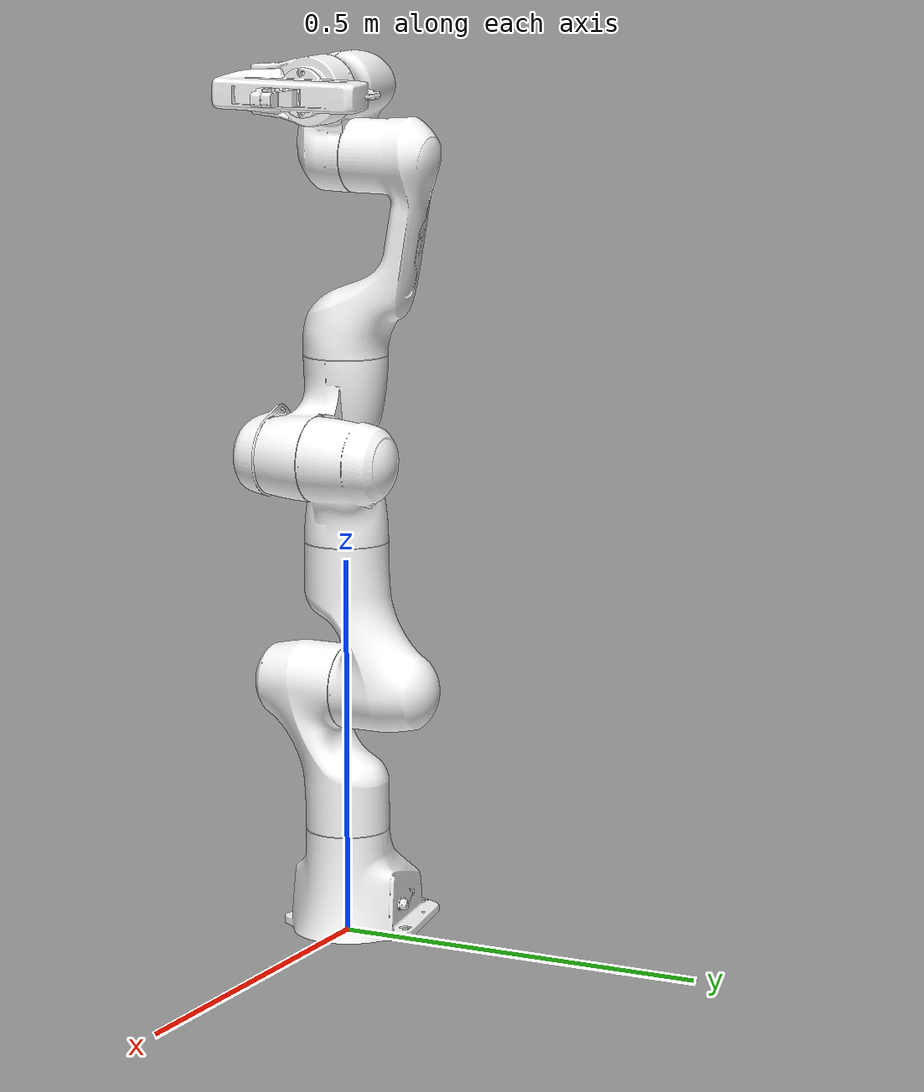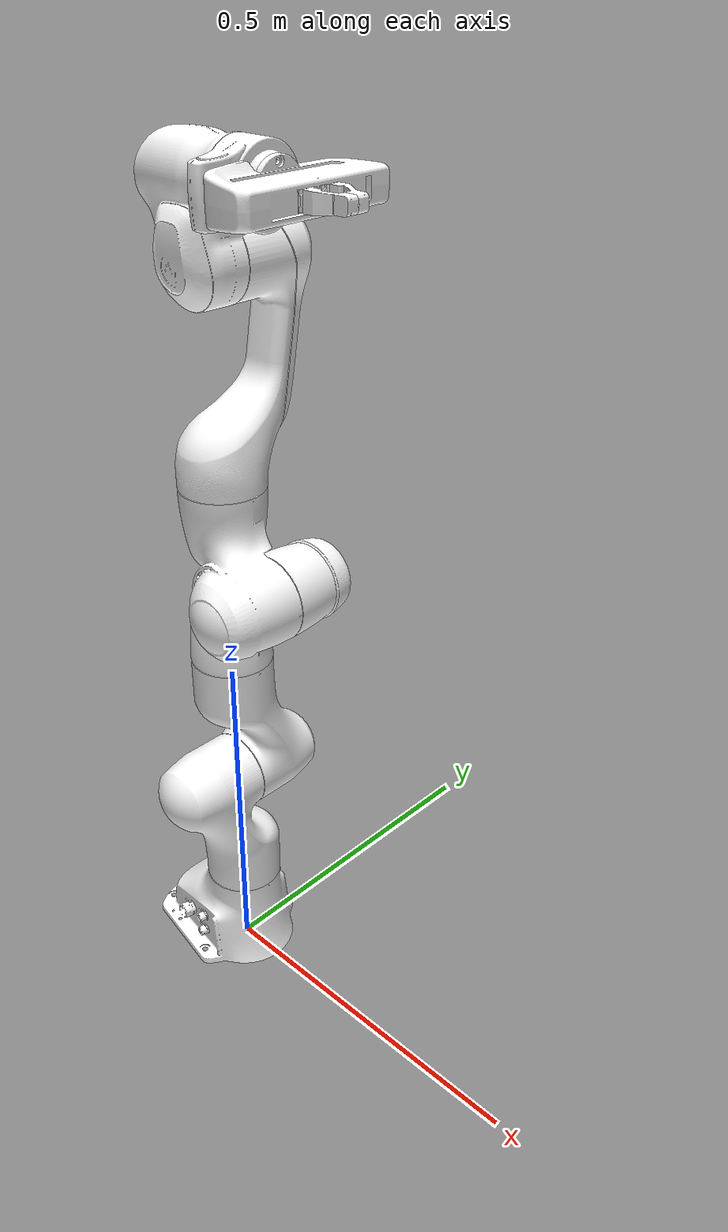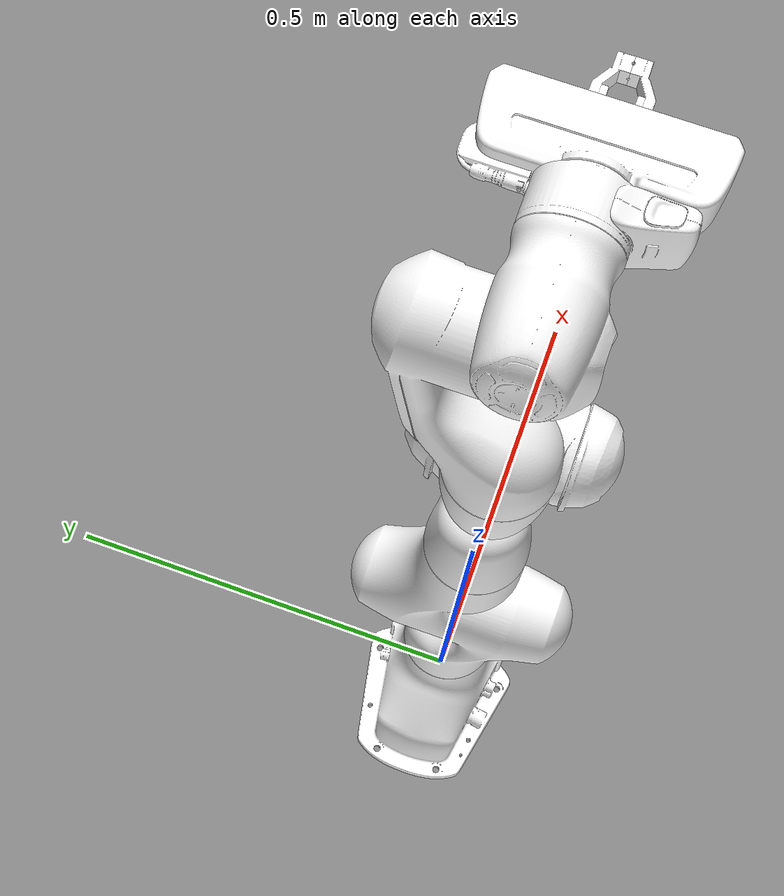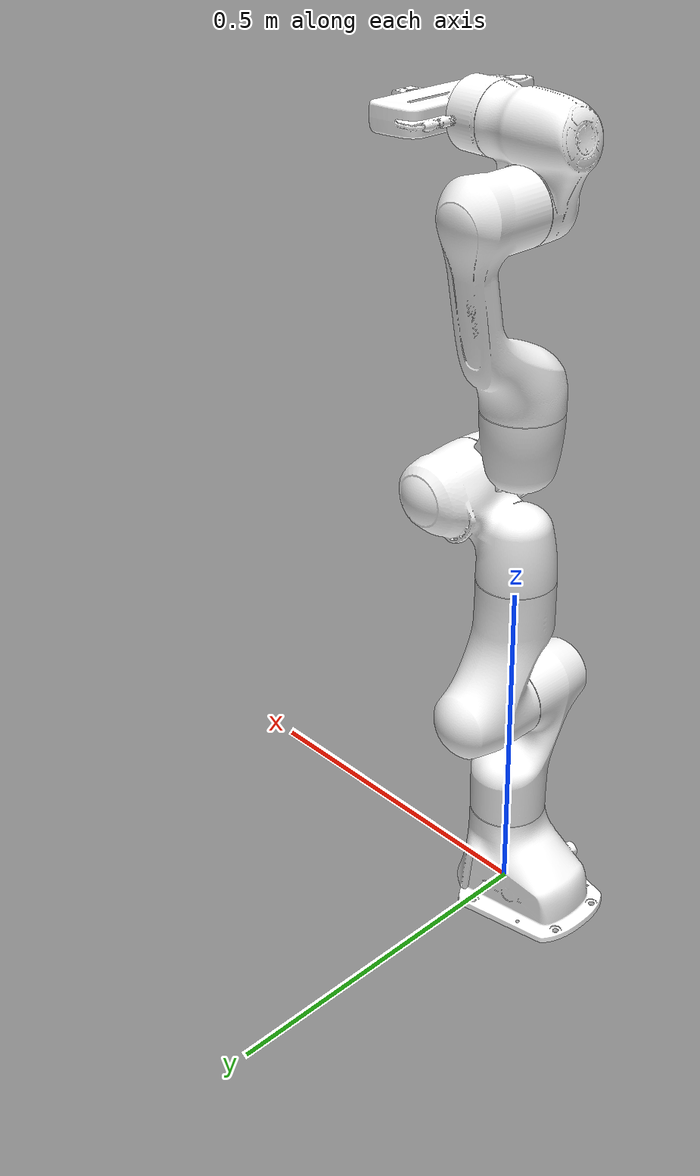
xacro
<?xml version="1.0" ?>
<robot name="panda" xmlns:xacro="http://www.ros.org/wiki/xacro">

  <xacro:include filename="$(find panda_description)/urdf/panda_desc.urdf.xacro" />
  <xacro:include filename="$(find panda_description)/urdf/panda.gazebo" />
  <xacro:include filename="$(find panda_description)/urdf/ros2_control.xacro" />

</robot>

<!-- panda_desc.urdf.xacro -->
<!-- |    This document was autogenerated by xacro from /opt/ros/kinetic/share/moveit_resources/panda_description/urdf/panda.urdf | -->
<!-- |    EDITING THIS FILE BY HAND IS NOT RECOMMENDED                                 | -->

<robot name="panda" xmlns:xacro="http://www.ros.org/wiki/xacro">

		<link name="world">
		</link>
		<joint name="world_joint" type="fixed">
			<parent link="world"/>
			<child link="base_link"/>
		</joint>

    <link name="base_link">
      <inertial>
        <mass value="2.92"/>
        <origin rpy="0 0 0" xyz="-0.025566 -2.88e-05 0.057332"/>
        <inertia ixx="0.00782229414331" ixy="-1.56191622996e-05" ixz="-0.00126005738123" iyy="0.0109027971813" iyz="1.08233858202e-05" izz="0.0102355503949"/>
      </inertial>
      <visual>
        <origin rpy="0 0 0" xyz="0 0 0"/>
        <geometry>
          <mesh filename="file://$(find panda_description)/meshes/visual/link0.dae"/>
        </geometry>
        <material name="">
          <color rgba="1 1 1 1"/>
        </material>
      </visual>
      <collision>
        <origin rpy="0 0 0" xyz="0 0 0"/>
        <geometry>
          <mesh filename="file://$(find panda_description)/meshes/collision/link0.stl"/>
        </geometry>
      </collision>
    </link>

    <!-- panda_link1 -->
    <link name="panda_link1">
      <inertial>
        <mass value="2.74"/>
        <origin rpy="0 0 0" xyz="0 -0.0324958 -0.0675818"/>
        <inertia ixx="0.0180416958283" ixy="0.0" ixz="0.0" iyy="0.0159136071891" iyz="0.0046758424612" izz="0.00620690827127"/>
      </inertial>
      <visual>
        <origin rpy="0 0 0" xyz="0 0 0"/>
        <geometry>
          <mesh filename="file://$(find panda_description)/meshes/visual/link1.dae"/>
        </geometry>
        <material name="">
          <color rgba="1 1 1 1"/>
        </material>
      </visual>
      <collision>
        <origin rpy="0 0 0" xyz="0 0 0"/>
        <geometry>
          <mesh filename="file://$(find panda_description)/meshes/collision/link1.stl"/>
        </geometry>
      </collision>
    </link>
    <!-- panda_joint1 -->
    <joint name="panda_joint1" type="revolute">
      <origin rpy="0 0 0" xyz="0 0 0.333"/>
      <parent link="base_link"/>
      <child link="panda_link1"/>
      <axis xyz="0 0 1"/>
      <limit effort="87" lower="-2.8973" upper="2.8973" velocity="2.1750"/>
    </joint>

    <!-- panda_link2 -->
    <link name="panda_link2">
      <inertial>
        <mass value="2.74"/>
        <origin rpy="0 0 0" xyz="0 -0.06861 0.0322285"/>
        <inertia ixx="0.0182856182281" ixy="0.0" ixz="0.0" iyy="0.00621358421175" iyz="-0.00472844221905" izz="0.0161514346309"/>
      </inertial>
      <visual>
        <origin rpy="0 0 0" xyz="0 0 0"/>
        <geometry>
          <mesh filename="file://$(find panda_description)/meshes/visual/link2.dae"/>
        </geometry>
        <material name="">
          <color rgba="1 1 1 1"/>
        </material>
      </visual>
      <collision>
        <origin rpy="0 0 0" xyz="0 0 0"/>
        <geometry>
          <mesh filename="file://$(find panda_description)/meshes/collision/link2.stl"/>
        </geometry>
      </collision>
    </link>
    <!-- panda_joint2 -->
    <joint name="panda_joint2" type="revolute">
      <origin rpy="-1.57079632679 0 0" xyz="0 0 0"/>
      <parent link="panda_link1"/>
      <child link="panda_link2"/>
      <axis xyz="0 0 1"/>
      <limit effort="87" lower="-1.7628" upper="1.7628" velocity="2.1750"/>
    </joint>

    <!-- panda_link3 -->
    <link name="panda_link3">
      <inertial>
        <mass value="2.38"/>
        <origin rpy="0 0 0" xyz="0.0469893 0.0316374 -0.031704"/>
        <inertia ixx="0.00771376630908" ixy="-0.00248490625138" ixz="-0.00332147581033" iyy="0.00989108008727" iyz="-0.00217796151484" izz="0.00811723558464"/>
      </inertial>
      <visual>
        <origin rpy="0 0 0" xyz="0 0 0"/>
        <geometry>
          <mesh filename="file://$(find panda_description)/meshes/visual/link3.dae"/>
        </geometry>
        <material name="">
          <color rgba="1 1 1 1"/>
        </material>
      </visual>
      <collision>
        <origin rpy="0 0 0" xyz="0 0 0"/>
        <geometry>
          <mesh filename="file://$(find panda_description)/meshes/collision/link3.stl"/>
        </geometry>
      </collision>
    </link>
    <!-- panda_joint3 -->
    <joint name="panda_joint3" type="revolute">
      <origin rpy="1.57079632679 0 0" xyz="0 -0.316 0"/>
      <parent link="panda_link2"/>
      <child link="panda_link3"/>
      <axis xyz="0 0 1"/>
      <limit effort="87" lower="-2.8973" upper="2.8973" velocity="2.1750"/>
    </joint>

    <!-- panda_link4-->
    <link name="panda_link4">
      <inertial>
        <mass value="2.38"/>
        <origin rpy="0 0 0" xyz="-0.0360446 0.0336853 0.031882"/>
        <inertia ixx="0.00799663881132" ixy="0.00347095570217" ixz="-0.00241222942995" iyy="0.00825390705278" iyz="0.00235774044121" izz="0.0102515004345"/>
      </inertial>
      <visual>
        <origin rpy="0 0 0" xyz="0 0 0"/>
        <geometry>
          <mesh filename="file://$(find panda_description)/meshes/visual/link4.dae"/>
        </geometry>
        <material name="">
          <color rgba="1 1 1 1"/>
        </material>
      </visual>
      <collision>
        <origin rpy="0 0 0" xyz="0 0 0"/>
        <geometry>
          <mesh filename="file://$(find panda_description)/meshes/collision/link4.stl"/>
        </geometry>
      </collision>
    </link>
    <!-- panda_joint4 -->
    <joint name="panda_joint4" type="revolute">
      <origin rpy="1.57079632679 0 0" xyz="0.0825 0 0"/>
      <parent link="panda_link3"/>
      <child link="panda_link4"/>
      <axis xyz="0 0 1"/>
      <limit effort="87" lower="-3.0718" upper="0.0698" velocity="2.1750"/>
      <!-- upper should be -0.0698, but that brakes simulation when initial position for this joint is 0.0 -->
    </joint>

    <!-- panda_link5 -->
    <link name="panda_link5">
      <inertial>
        <mass value="2.74"/>
        <origin rpy="0 0 0" xyz="0 0.0610427 -0.104176"/>
        <inertia ixx="0.030371374513" ixy="6.50283587108e-07" ixz="-1.05129179916e-05" iyy="0.0288752887402" iyz="-0.00775653445787" izz="0.00444134056164"/>
      </inertial>
      <visual>
        <origin rpy="0 0 0" xyz="0 0 0"/>
        <geometry>
          <mesh filename="file://$(find panda_description)/meshes/visual/link5.dae"/>
        </geometry>
        <material name="">
          <color rgba="1 1 1 1"/>
        </material>
      </visual>
      <collision>
        <origin rpy="0 0 0" xyz="0 0 0"/>
        <geometry>
          <mesh filename="file://$(find panda_description)/meshes/collision/link5.stl"/>
        </geometry>
      </collision>
    </link>
    <!-- panda_joint5 -->
    <joint name="panda_joint5" type="revolute">
      <origin rpy="-1.57079632679 0 0" xyz="-0.0825 0.384 0"/>
      <parent link="panda_link4"/>
      <child link="panda_link5"/>
      <axis xyz="0 0 1"/>
      <limit effort="12" lower="-2.8973" upper="2.8973" velocity="2.6100"/>
    </joint>

    <!-- panda_link6 -->
    <link name="panda_link6">
      <inertial>
        <mass value="1.55"/>
        <origin rpy="0 0 0" xyz="0.0510509 0.009108 0.0106343"/>
        <inertia ixx="0.00303336450376" ixy="-0.000437276865508" ixz="0.000629257294877" iyy="0.00404479911567" iyz="0.000130472021025" izz="0.00558234286039"/>
      </inertial>
      <visual>
        <origin rpy="0 0 0" xyz="0 0 0"/>
        <geometry>
          <mesh filename="file://$(find panda_description)/meshes/visual/link6.dae"/>
        </geometry>
        <material name="">
          <color rgba="1 1 1 1"/>
        </material>
      </visual>
      <collision>
        <origin rpy="0 0 0" xyz="0 0 0"/>
        <geometry>
          <mesh filename="file://$(find panda_description)/meshes/collision/link6.stl"/>
        </geometry>
      </collision>
    </link>
    <!-- panda_joint6 -->
    <joint name="panda_joint6" type="revolute">
      <origin rpy="1.57079632679 -1.57079632679 0" xyz="0 0 0"/> <!-- rpy="1.57079632679 0 0" -->
      <parent link="panda_link5"/>
      <child link="panda_link6"/>
      <axis xyz="0 0 1"/>
      <limit effort="12" lower="-0.0175" upper="3.7525" velocity="2.6100"/>
    </joint>

    <!-- panda_link7 -->
    <link name="panda_link7">
      <inertial>
        <mass value="0.54"/>
        <origin rpy="0 0 0" xyz="0.0109695 0.0107965 0.0650411"/>
        <inertia ixx="0.000888868887021" ixy="-0.00012239074652" ixz="3.98699829666e-05" iyy="0.000888001373233" iyz="-9.33825115206e-05" izz="0.0007176834609"/>
      </inertial>
      <visual>
        <origin rpy="0 0 0" xyz="0 0 0"/>
        <geometry>
          <mesh filename="file://$(find panda_description)/meshes/visual/link7.dae"/>
        </geometry>
        <material name="">
          <color rgba="1 1 1 1"/>
        </material>
      </visual>
      <collision>
        <origin rpy="0 0 0" xyz="0 0 0"/>
        <geometry>
          <mesh filename="file://$(find panda_description)/meshes/collision/link7.stl"/>
        </geometry>
      </collision>
    </link>
    <!-- panda_joint7 -->
    <joint name="panda_joint7" type="revolute">
      <origin rpy="1.57079632679 -0.7854 0" xyz="0.088 0 0"/> <!-- rpy="1.57079632679 0 0" -->
      <parent link="panda_link6"/>
      <child link="panda_link7"/>
      <axis xyz="0 0 1"/>
      <limit effort="12" lower="-3.15" upper="3.15" velocity="2.6100"/>
    </joint>

    <!-- panda_link8 -->
    <link name="panda_link8"/>
    <!-- panda_joint8 -->
    <joint name="panda_joint8" type="fixed">
      <origin rpy="0 0 0" xyz="0 0 0.107"/>
      <parent link="panda_link7"/>
      <child link="panda_link8"/>
      <axis xyz="0 0 0"/>
    </joint>

    <!-- panda_hand -->
    <joint name="panda_hand_joint" type="fixed">
      <parent link="panda_link8"/>
      <child link="panda_hand"/>
      <origin rpy="0 0 -0.785398163397" xyz="0 0 0"/>
    </joint>
    <link name="panda_hand">
      <inertial>
        <mass value="0.73"/>
        <origin rpy="0 0 0" xyz="0 0.0015244 0.0275912"/>
        <inertia ixx="0.00278560230025" ixy="0.0" ixz="0.0" iyy="0.000400033405336" iyz="0.0" izz="0.00256378041832"/>
      </inertial>
      <visual>
        <origin rpy="0 0 0" xyz="0 0 0"/>
        <geometry>
          <mesh filename="file://$(find panda_description)/meshes/visual/hand.dae"/>
        </geometry>
        <material name="">
          <color rgba="1 1 1 1"/>
        </material>
      </visual>
      <collision>
        <origin rpy="0 0 0" xyz="0 0 0"/>
        <geometry>
          <mesh filename="file://$(find panda_description)/meshes/collision/hand.stl"/>
        </geometry>
      </collision>
    </link>

    <!-- panda_leftfinger -->
    <link name="panda_leftfinger">
      <inertial>
        <mass value="0.1"/>
        <origin rpy="0 0 0" xyz="0 0.0145644 0.0227941"/>
        <inertia ixx="3.01220925051e-05" ixy="0.0" ixz="0.0" iyy="2.95873808038e-05" iyz="0.0" izz="6.95125211657e-06"/>
      </inertial>
      <visual>
        <origin rpy="0 0 0" xyz="0 0 0"/>
        <geometry>
          <mesh filename="file://$(find panda_description)/meshes/visual/finger.dae"/>
        </geometry>
        <material name="">
          <color rgba="1 1 1 1"/>
        </material>
      </visual>
      <collision>
        <origin rpy="0 0 0" xyz="0 0 0"/>
        <geometry>
          <mesh filename="file://$(find panda_description)/meshes/collision/finger.stl"/>
        </geometry>
      </collision>
    </link>
    <!-- panda_rightfinger -->
    <link name="panda_rightfinger">
      <inertial>
        <mass value="0.1"/>
        <origin rpy="0 0 3.14159265359" xyz="0 0.0145644 0.0227941"/>
        <inertia ixx="3.01220925051e-05" ixy="0.0" ixz="0.0" iyy="2.95873808038e-05" iyz="0.0" izz="6.95125211657e-06"/>
      </inertial>
      <visual>
        <origin rpy="0 0 3.14159265359" xyz="0 0 0"/>
        <geometry>
          <mesh filename="file://$(find panda_description)/meshes/visual/finger.dae"/>
        </geometry>
        <material name="">
          <color rgba="1 1 1 1"/>
        </material>
      </visual>
      <collision>
        <origin rpy="0 0 3.14159265359" xyz="0 0 0"/>
        <geometry>
          <mesh filename="file://$(find panda_description)/meshes/collision/finger.stl"/>
        </geometry>
      </collision>
    </link>
    <joint name="panda_finger_joint1" type="prismatic">
      <parent link="panda_hand"/>
      <child link="panda_leftfinger"/>
      <origin rpy="0 0 0" xyz="0 0 0.058"/>
      <axis xyz="0 1 0"/>
      <limit effort="20" lower="-0.001" upper="0.04" velocity="0.3"/>
    </joint>
    <joint name="panda_finger_joint2" type="prismatic">
			<mimic joint="panda_finger_joint1" multiplier="1" offset="0" />
      <parent link="panda_hand"/>
      <child link="panda_rightfinger"/>
      <origin rpy="0 0 0" xyz="0 0 0.058"/>
      <axis xyz="0 -1 0"/>
      <limit effort="20" lower="-0.001" upper="0.04" velocity="0.3"/>
    </joint>

</robot>

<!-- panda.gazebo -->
<robot name="panda" xmlns:xacro="http://www.ros.org/wiki/xacro" >

<xacro:property name="White" value="Gazebo/White" />
<gazebo>
    <plugin name="gazebo_ros2_control" filename="libgazebo_ros2_control.so">
        <robot_sim_type>gazebo_ros2_control/GazeboSystem</robot_sim_type>
        <parameters>$(find panda_description)/config/my_controllers.yaml</parameters>
    </plugin>
</gazebo>

<gazebo reference="base_link">
	<material>${White}</material>
  <mu1>0.2</mu1>
  <mu2>0.2</mu2>
  <self_collide>true</self_collide>
</gazebo>

<gazebo reference="panda_link1">
	<material>${White}</material>
  <mu1>0.2</mu1>
  <mu2>0.2</mu2>
  <self_collide>true</self_collide>
</gazebo>

<gazebo reference="panda_link2">
	<material>${White}</material>
  <mu1>0.2</mu1>
  <mu2>0.2</mu2>
  <self_collide>true</self_collide>
</gazebo>

<gazebo reference="panda_link3">
	<material>${White}</material>
  <mu1>0.2</mu1>
  <mu2>0.2</mu2>
  <self_collide>true</self_collide>
</gazebo>

<gazebo reference="panda_link4">
	<material>${White}</material>
  <mu1>0.2</mu1>
  <mu2>0.2</mu2>
  <self_collide>true</self_collide>
</gazebo>

<gazebo reference="panda_link5">
	<material>${White}</material>
  <mu1>0.2</mu1>
  <mu2>0.2</mu2>
  <self_collide>true</self_collide>
</gazebo>

<gazebo reference="panda_link6">
	<material>${White}</material>
  <mu1>0.2</mu1>
  <mu2>0.2</mu2>
  <self_collide>true</self_collide>
</gazebo>

<gazebo reference="panda_link7">
	<material>${White}</material>
  <mu1>0.2</mu1>
  <mu2>0.2</mu2>
  <self_collide>true</self_collide>
</gazebo>

<gazebo reference="panda_link8">
		<material>${White}</material>
  <mu1>0.2</mu1>
  <mu2>0.2</mu2>
  <self_collide>true</self_collide>
</gazebo>

<gazebo reference="panda_hand">
		<material>${White}</material>
  <mu1>0.2</mu1>
  <mu2>0.2</mu2>
  <self_collide>true</self_collide>
</gazebo>

<gazebo reference="panda_leftfinger">
		<material>${White}</material>
  <mu1>0.2</mu1>
  <mu2>0.2</mu2>
  <self_collide>true</self_collide>
</gazebo>

<gazebo reference="panda_rightfinger">
		<material>${White}</material>
  <mu1>0.2</mu1>
  <mu2>0.2</mu2>
  <self_collide>true</self_collide>
</gazebo>

</robot>
